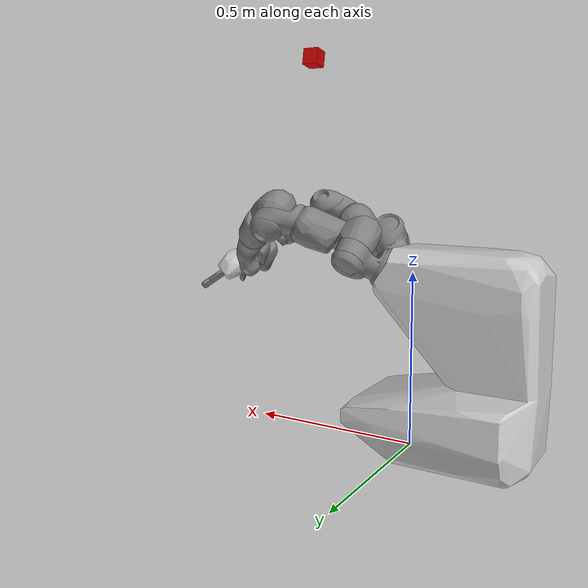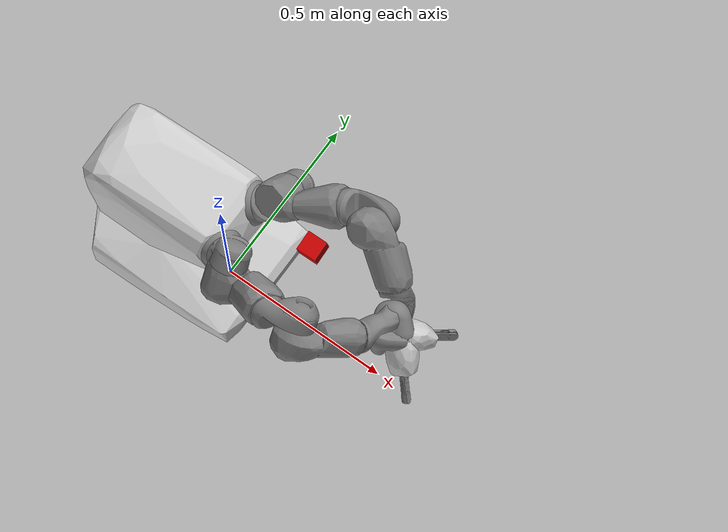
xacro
<?xml version="1.0"?>
<robot name="yumi" xmlns:xacro="http://www.ros.org/wiki/xacro">
  <!-- Add world link -->
  <link name="world"/>

  <!-- Import Rviz colors -->
  <xacro:include filename="$(find yumi_description)/urdf/materials.xacro" />
  <!-- Import utilities -->
  <xacro:include filename="$(find yumi_description)/urdf/utilities.xacro" />
  <!--Import the yumi macro -->
  <xacro:include filename="$(find yumi_description)/urdf/yumi.xacro"/>
  <!--Import the yumi servo gripper macro -->
  <xacro:include filename="$(find yumi_description)/urdf/yumi_servo_gripper.xacro"/>

  <!-- Add fixed joint between world and base_link -->
  <joint name="world_joint" type="fixed">
    <parent link="world"/>
    <child link="base_link"/>
    <origin xyz="0 0 0.1" rpy="0 0 0"/>
  </joint>

  <!-- Define base_link -->
  <link name="base_link">
    <visual>
      <origin rpy="0 0 0" xyz="0 0 0"/>
      <geometry>
        <mesh filename="package://yumi_description/meshes/body.stl"/>
      </geometry>
      <material name="Light_Grey"/>
    </visual>
    <collision>
      <origin rpy="0 0 0" xyz="0 0 0"/>
      <geometry>
        <mesh filename="package://yumi_description/meshes/coarse/body.stl"/>
      </geometry>
      <material name="Light_Grey"/>
    </collision>
  </link>

  <!-- Camera Link -->
  <link name="phoxi">
    <collision>
      <origin xyz="0 0 0" rpy="0 0 0"/>
      <geometry>
        <box size="0.05 0.05 0.05"/>
      </geometry>
    </collision>
    <visual>
      <origin xyz="0 0 0" rpy="0 0 0"/>
      <geometry>
        <box size="0.05 0.05 0.05"/>
      </geometry>
      <material name="Red"/>
    </visual>
    <inertial>
      <mass value="1e-5"/>
      <origin xyz="0 0 0" rpy="0 0 0"/>
      <inertia ixx="1e-6" ixy="0" ixz="0" iyy="1e-6" iyz="0" izz="1e-6"/>
    </inertial>
  </link>

  <!-- Camera Joint with correct transformation -->
  <joint name="phoxi_joint" type="fixed">
    <parent link="base_link"/>
    <child link="phoxi"/>
    <origin xyz="0.374278 -0.089685 1.043344" rpy="-1.5533 0.157080 -1.5542"/>
  </joint>

  <!--yumi-->
  <xacro:yumi name="yumi" hardware_interface="PositionJointInterface" parent="base_link">
    <origin xyz="0 0 0" rpy="0 0 0"/>
  </xacro:yumi>

  <!--right gripper-->
  <xacro:yumi_servo_gripper name="gripper_r" hardware_interface="PositionJointInterface" parent="yumi_link_7_r">
    <origin xyz="0 0 0.007" rpy="0 0 ${PI}"/>
  </xacro:yumi_servo_gripper>

  <!--left gripper-->
  <xacro:yumi_servo_gripper name="gripper_l" hardware_interface="PositionJointInterface" parent="yumi_link_7_l">
    <origin xyz="0 0 0.007" rpy="0 0 ${PI}"/>
  </xacro:yumi_servo_gripper>

</robot>

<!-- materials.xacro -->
<robot>

  <material name="Black">
    <color rgba="0.0 0.0 0.0 1.0"/>
  </material>

  <material name="Blue">
    <color rgba="0.0 0.0 0.8 1.0"/>
  </material>

  <material name="Green">
    <color rgba="0.0 0.8 0.0 1.0"/>
  </material>

  <material name="Grey">
    <color rgba="0.5 0.5 0.5 1.0"/>
  </material>

  <material name="Light_Grey">
    <color rgba="0.8 0.8 0.8 1.0"/>
  </material>

  <material name="Ivory">
    <color rgba="1.0 1.0 0.94 1.0"/>
  </material>

  <material name="Orange">
    <color rgba="${255/255} ${108/255} ${10/255} 1.0"/>
  </material>

  <material name="Brown">
    <color rgba="${222/255} ${207/255} ${195/255} 1.0"/>
  </material>

  <material name="Red">
    <color rgba="0.8 0.0 0.0 1.0"/>
  </material>

  <material name="White">
    <color rgba="1.0 1.0 1.0 1.0"/>
  </material>

</robot>

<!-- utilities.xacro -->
<robot name="lbr_iiwa" xmlns:xacro="http://www.ros.org/wiki/xacro">

  <xacro:property name="PI" value="3.1415926535897931"/>

<!-- The following macros are adapted from the LWR 4 definitions of the RCPRG - https://github.com/RCPRG-ros-pkg/lwr_robot -->
  <!--Little helper macros to define the inertia matrix needed for links.-->
  <!--Cuboid-->
  <xacro:macro name="cuboid_inertia" params="width height length mass">
    <inertia ixx="${mass * (height * height + length * length) / 12)}"
             iyy="${mass * (width * width + length * length) / 12)}"
             izz="${mass * (width * width + height * height) / 12)}"
             ixy="0" iyz="0" ixz="0"/>
  </xacro:macro>

  <!--Cylinder: length is along the y-axis! -->
  <xacro:macro name="cylinder_inertia" params="radius length mass">
    <inertia ixx="${mass * (3 * radius * radius + length * length) / 12)}"
             iyy="${mass * radius* radius / 2)}"
             izz="${mass * (3 * radius * radius + length * length) / 12)}"
             ixy="0" iyz="0" ixz="0"/>
  </xacro:macro>

</robot>

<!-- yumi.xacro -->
<robot name="yumi" xmlns:xacro="http://www.ros.org/wiki/xacro">

  <!-- Import all Gazebo-customization elements, including Gazebo colors -->
  <xacro:include filename="$(find yumi_description)/urdf/yumi.gazebo.xacro" />
  <!-- Import Transmissions -->
  <xacro:include filename="$(find yumi_description)/urdf/yumi.transmission.xacro" />
  <!-- Include Utilities -->
  <xacro:include filename="$(find yumi_description)/urdf/utilities.xacro" />

  <!-- some constants -->
  <xacro:property name="joint_damping" value="0.5" />
  <xacro:property name="max_effort" value="300"/>

  <xacro:macro name="yumi" params="parent name hardware_interface *origin">

    <!--joint between {parent} and body-->
    <joint name="${parent}_joint" type="fixed">
      <insert_block name="origin"/>
      <parent link="${parent}"/>
      <child link="${name}_body"/>
    </joint>

    <link name="${name}_body">
      <inertial>
        <origin xyz="0 0 0" rpy="0 0 0"/>
        <mass value="15"/>
        <inertia ixx="0.5"  ixy="0"  ixz="0" iyy="0.6" iyz="0" izz="0.3" />
      </inertial>

      <visual>
        <origin xyz="0 0 0" rpy="0 0 0"/>
        <geometry>
          <mesh filename="package://yumi_description/meshes/body.stl"/>
        </geometry>
        <material name="Light_Grey"/>
      </visual>

      <collision>
        <origin xyz="0 0 0" rpy="0 0 0"/>
        <geometry>
          <mesh filename="package://yumi_description/meshes/coarse/body.stl"/>
        </geometry>
        <material name="Light_Grey"/>
      </collision>

    </link>

   <!--///////////////////////////////////// RIGHT ARM ////////////////////////////////  -->

   <!-- joint between body and link_1_r -->
    <joint name="${name}_joint_1_r" type="revolute">
      <parent link="${name}_body"/>
      <child link="${name}_link_1_r"/>
      <origin xyz="0.05355 -0.0725 0.41492" rpy="-0.9795   -0.5682   -2.3155"/>
      <axis xyz="0 0 1"/>
      <limit lower="${-168.5 * PI / 180}" upper="${168.5 * PI / 180}"
             effort="${max_effort}" velocity="${180 * PI / 180}" />
      <dynamics damping="${joint_damping}"/>
    </joint>

   <link name="${name}_link_1_r">
      <inertial>
        <origin xyz="0 -0.03 0.12" rpy="0 0 0"/>
        <mass value="2"/>
        <inertia ixx="0.1"  ixy="0"  ixz="0" iyy="0.1" iyz="0" izz="0.1" />
      </inertial>

      <visual>
        <origin xyz="0 0 0" rpy="0 0 0"/>
        <geometry>
          <mesh filename="package://yumi_description/meshes/link_1.stl"/>
        </geometry>
        <material name="Grey"/>
      </visual>

      <collision>
        <origin xyz="0 0 0" rpy="0 0 0"/>
        <geometry>
          <mesh filename="package://yumi_description/meshes/coarse/link_1.stl"/>
        </geometry>
        <material name="Grey"/>
      </collision>
    </link>

   <!-- joint between link_1_r and link_2_r -->
    <joint name="${name}_joint_2_r" type="revolute">
      <parent link="${name}_link_1_r"/>
      <child link="${name}_link_2_r"/>
      <origin xyz="0.03 0.0 0.1" rpy="${PI / 2} 0.0 0.0"/>
      <axis xyz="0 0 1"/>
      <limit lower="${-143.5 * PI / 180}" upper="${43.5 * PI / 180}"
             effort="${max_effort}" velocity="${180 * PI / 180}" />
      <dynamics damping="${joint_damping}"/>
    </joint>

   <link name="${name}_link_2_r">
      <inertial>
        <origin xyz="0 0 0" rpy="0 0 0"/>
        <mass value="2"/>
        <inertia ixx="0.1"  ixy="0"  ixz="0" iyy="0.1" iyz="0" izz="0.1" />
      </inertial>

      <visual>
        <origin xyz="0 0 0" rpy="0 0 0"/>
        <geometry>
          <mesh filename="package://yumi_description/meshes/link_2.stl"/>
        </geometry>
        <material name="Grey"/>
      </visual>

      <collision>
        <origin xyz="0 0 0" rpy="0 0 0"/>
        <geometry>
          <mesh filename="package://yumi_description/meshes/coarse/link_2.stl"/>
        </geometry>
        <material name="Grey"/>
      </collision>
    </link>

   <!-- joint between link_2_r and link_3_r -->
    <joint name="${name}_joint_7_r" type="revolute">
      <parent link="${name}_link_2_r"/>
      <child link="${name}_link_3_r"/>
      <origin xyz="-0.03 0.17283 0.0" rpy="${-PI / 2} 0.0 0.0"/>
      <axis xyz="0 0 1"/>
      <limit lower="${-168.5 * PI / 180}" upper="${168.5 * PI / 180}"
             effort="${max_effort}" velocity="${180 * PI / 180}" />
      <dynamics damping="${joint_damping}"/>
    </joint>

   <link name="${name}_link_3_r">
      <inertial>
        <origin xyz="0 0 0" rpy="0 0 0"/>
        <mass value="2"/>
        <inertia ixx="0.1"  ixy="0"  ixz="0" iyy="0.1" iyz="0" izz="0.1" />
      </inertial>

      <visual>
        <origin xyz="0 0 0" rpy="0 0 0"/>
        <geometry>
          <mesh filename="package://yumi_description/meshes/link_3.stl"/>
        </geometry>
        <material name="Grey"/>
      </visual>

      <collision>
        <origin xyz="0 0 0" rpy="0 0 0"/>
        <geometry>
          <mesh filename="package://yumi_description/meshes/coarse/link_3.stl"/>
        </geometry>
        <material name="Grey"/>
      </collision>
    </link>

   <!-- joint between link_3_r and link_4_r -->
    <joint name="${name}_joint_3_r" type="revolute">
      <parent link="${name}_link_3_r"/>
      <child link="${name}_link_4_r"/>
      <origin xyz="-0.04188 0.0 0.07873" rpy="${PI / 2} ${- PI / 2} 0.0"/>
      <axis xyz="0 0 1"/>
      <limit lower="${-123.5 * PI / 180}" upper="${80 * PI / 180}"
             effort="${max_effort}" velocity="${180 * PI / 180}" />
      <dynamics damping="${joint_damping}"/>
    </joint>

   <link name="${name}_link_4_r">
      <inertial>
        <origin xyz="0 0 0" rpy="0 0 0"/>
        <mass value="2"/>
        <inertia ixx="0.1"  ixy="0"  ixz="0" iyy="0.1" iyz="0" izz="0.1" />
      </inertial>

      <visual>
        <origin xyz="0 0 0" rpy="0 0 0"/>
        <geometry>
          <mesh filename="package://yumi_description/meshes/link_4.stl"/>
        </geometry>
        <material name="Grey"/>
      </visual>

      <collision>
        <origin xyz="0 0 0" rpy="0 0 0"/>
        <geometry>
          <mesh filename="package://yumi_description/meshes/coarse/link_4.stl"/>
        </geometry>
        <material name="Grey"/>
      </collision>
    </link>

   <!-- joint between link_4_r and link_5_r -->
    <joint name="${name}_joint_4_r" type="revolute">
      <parent link="${name}_link_4_r"/>
      <child link="${name}_link_5_r"/>
      <origin xyz="0.0405 0.16461 0.0" rpy="-${PI / 2} 0.0 0.0"/>
      <axis xyz="0 0 1"/>
      <limit lower="${-290 * PI / 180}" upper="${290 * PI / 180}"
             effort="${max_effort}" velocity="${400 * PI / 180}" />
      <dynamics damping="${joint_damping}"/>
    </joint>

   <link name="${name}_link_5_r">
      <inertial>
        <origin xyz="0 0 0" rpy="0 0 0"/>
        <mass value="2"/>
        <inertia ixx="0.1"  ixy="0"  ixz="0" iyy="0.1" iyz="0" izz="0.1" />
      </inertial>

      <visual>
        <origin xyz="0 0 0" rpy="0 0 0"/>
        <geometry>
          <mesh filename="package://yumi_description/meshes/link_5.stl"/>
        </geometry>
        <material name="Grey"/>
      </visual>

      <collision>
        <origin xyz="0 0 0" rpy="0 0 0"/>
        <geometry>
          <mesh filename="package://yumi_description/meshes/coarse/link_5.stl"/>
        </geometry>
        <material name="Grey"/>
      </collision>
    </link>

   <!-- joint between link_5_r and link_6_r -->
    <joint name="${name}_joint_5_r" type="revolute">
      <parent link="${name}_link_5_r"/>
      <child link="${name}_link_6_r"/>
      <origin xyz="-0.027 0 0.10039" rpy="${PI / 2} 0.0 0.0"/>
      <axis xyz="0 0 1"/>
      <limit lower="${-88 * PI / 180}" upper="${138 * PI / 180}"
             effort="${max_effort}" velocity="${400 * PI / 180}" />
      <dynamics damping="${joint_damping}"/>
    </joint>

   <link name="${name}_link_6_r">
      <inertial>
        <origin xyz="0 0 0" rpy="0 0 0"/>
        <mass value="2"/>
        <inertia ixx="0.1"  ixy="0"  ixz="0" iyy="0.1" iyz="0" izz="0.1" />
      </inertial>

      <visual>
        <origin xyz="0 0 0" rpy="0 0 0"/>
        <geometry>
          <mesh filename="package://yumi_description/meshes/link_6.stl"/>
        </geometry>
        <material name="Grey"/>
      </visual>

      <collision>
        <origin xyz="0 0 0" rpy="0 0 0"/>
        <geometry>
          <mesh filename="package://yumi_description/meshes/coarse/link_6.stl"/>
        </geometry>
        <material name="Grey"/>
      </collision>
    </link>

   <!-- joint between link_6_r and link_7_r -->
    <joint name="${name}_joint_6_r" type="revolute">
      <parent link="${name}_link_6_r"/>
      <child link="${name}_link_7_r"/>
      <origin xyz="0.027 0.029 0.0" rpy="-${PI / 2} 0.0 0.0"/>
      <axis xyz="0 0 1"/>
      <limit lower="${-229 * PI / 180}" upper="${229 * PI / 180}"
             effort="${max_effort}" velocity="${400 * PI / 180}" />
      <dynamics damping="${joint_damping}"/>
    </joint>

   <link name="${name}_link_7_r">
      <inertial>
        <origin xyz="0 0 0" rpy="0 0 0"/>
        <mass value="2"/>
        <inertia ixx="0.1"  ixy="0"  ixz="0" iyy="0.1" iyz="0" izz="0.1" />
      </inertial>

      <visual>
        <origin xyz="0 0 0" rpy="0 0 0"/>
        <geometry>
          <mesh filename="package://yumi_description/meshes/link_7.stl"/>
        </geometry>
        <material name="Grey"/>
      </visual>

      <collision>
        <origin xyz="0 0 0" rpy="0 0 0"/>
        <geometry>
          <mesh filename="package://yumi_description/meshes/coarse/link_7.stl"/>
        </geometry>
        <material name="Grey"/>
      </collision>
    </link>

   <!--///////////////////////////////////// LEFT ARM ////////////////////////////////  -->

  <!-- joint between body and link_1_l -->
    <joint name="${name}_joint_1_l" type="revolute">
      <parent link="${name}_body"/>
      <child link="${name}_link_1_l"/>
      <origin xyz="0.05355 0.07250 0.41492" rpy="0.9781 -0.5716 2.3180"/>
      <axis xyz="0 0 1"/>
      <limit lower="${-168.5 * PI / 180}" upper="${168.5 * PI / 180}"
             effort="${max_effort}" velocity="${180 * PI / 180}" />
      <dynamics damping="${joint_damping}"/>
    </joint>

   <link name="${name}_link_1_l">
      <inertial>
        <origin xyz="0 -0.03 0.12" rpy="0 0 0"/>
        <mass value="2"/>
        <inertia ixx="0.1"  ixy="0"  ixz="0" iyy="0.1" iyz="0" izz="0.1" />
      </inertial>

      <visual>
        <origin xyz="0 0 0" rpy="0 0 0"/>
        <geometry>
          <mesh filename="package://yumi_description/meshes/link_1.stl"/>
        </geometry>
        <material name="Grey"/>
      </visual>

      <collision>
        <origin xyz="0 0 0" rpy="0 0 0"/>
        <geometry>
          <mesh filename="package://yumi_description/meshes/coarse/link_1.stl"/>
        </geometry>
        <material name="Grey"/>
      </collision>
    </link>

 <!-- joint between link_1_l and link_2_l -->
    <joint name="${name}_joint_2_l" type="revolute">
      <parent link="${name}_link_1_l"/>
      <child link="${name}_link_2_l"/>
      <origin xyz="0.03 0.0 0.1" rpy="${PI / 2} 0.0 0.0"/>
      <axis xyz="0 0 1"/>
      <limit lower="${-143.5 * PI / 180}" upper="${43.5 * PI / 180}"
             effort="${max_effort}" velocity="${180 * PI / 180}" />
      <dynamics damping="${joint_damping}"/>
    </joint>

   <link name="${name}_link_2_l">
      <inertial>
        <origin xyz="0 0 0" rpy="0 0 0"/>
        <mass value="2"/>
        <inertia ixx="0.1"  ixy="0"  ixz="0" iyy="0.1" iyz="0" izz="0.1" />
      </inertial>

      <visual>
        <origin xyz="0 0 0" rpy="0 0 0"/>
        <geometry>
          <mesh filename="package://yumi_description/meshes/link_2.stl"/>
        </geometry>
        <material name="Grey"/>
      </visual>

      <collision>
        <origin xyz="0 0 0" rpy="0 0 0"/>
        <geometry>
          <mesh filename="package://yumi_description/meshes/coarse/link_2.stl"/>
        </geometry>
        <material name="Grey"/>
      </collision>
    </link>

 <!-- joint between link_2_l and link_3_l -->
    <joint name="${name}_joint_7_l" type="revolute">
      <parent link="${name}_link_2_l"/>
      <child link="${name}_link_3_l"/>
      <origin xyz="-0.03 0.17283 0.0" rpy="-${PI / 2} 0.0 0.0"/>
      <axis xyz="0 0 1"/>
      <limit lower="${-168.5 * PI / 180}" upper="${168.5 * PI / 180}"
             effort="${max_effort}" velocity="${180 * PI / 180}" />
      <dynamics damping="${joint_damping}"/>
    </joint>

   <link name="${name}_link_3_l">
      <inertial>
        <origin xyz="0 0 0" rpy="0 0 0"/>
        <mass value="2"/>
        <inertia ixx="0.1"  ixy="0"  ixz="0" iyy="0.1" iyz="0" izz="0.1" />
      </inertial>

      <visual>
        <origin xyz="0 0 0" rpy="0 0 0"/>
        <geometry>
          <mesh filename="package://yumi_description/meshes/link_3.stl"/>
        </geometry>
        <material name="Grey"/>
      </visual>

      <collision>
        <origin xyz="0 0 0" rpy="0 0 0"/>
        <geometry>
          <mesh filename="package://yumi_description/meshes/coarse/link_3.stl"/>
        </geometry>
        <material name="Grey"/>
      </collision>
    </link>

   <!-- joint between link_3_l and link_4_l -->
    <joint name="${name}_joint_3_l" type="revolute">
      <parent link="${name}_link_3_l"/>
      <child link="${name}_link_4_l"/>
      <origin xyz="-0.04188 0.0 0.07873" rpy="${PI / 2} -${PI / 2} 0.0"/>
      <axis xyz="0 0 1"/>
      <limit lower="${-123.5 * PI / 180}" upper="${80 * PI / 180}"
             effort="${max_effort}" velocity="${180 * PI / 180}" />
      <dynamics damping="${joint_damping}"/>
    </joint>

   <link name="${name}_link_4_l">
      <inertial>
        <origin xyz="0 0 0" rpy="0 0 0"/>
        <mass value="2"/>
        <inertia ixx="0.1"  ixy="0"  ixz="0" iyy="0.1" iyz="0" izz="0.1" />
      </inertial>

      <visual>
        <origin xyz="0 0 0" rpy="0 0 0"/>
        <geometry>
          <mesh filename="package://yumi_description/meshes/link_4.stl"/>
        </geometry>
        <material name="Grey"/>
      </visual>

      <collision>
        <origin xyz="0 0 0" rpy="0 0 0"/>
        <geometry>
          <mesh filename="package://yumi_description/meshes/coarse/link_4.stl"/>
        </geometry>
        <material name="Grey"/>
      </collision>
    </link>

   <!-- joint between link_4_l and link_5_l -->
    <joint name="${name}_joint_4_l" type="revolute">
      <parent link="${name}_link_4_l"/>
      <child link="${name}_link_5_l"/>
      <origin xyz="0.0405 0.16461 0.0" rpy="-${PI / 2} 0.0 0.0"/>
      <axis xyz="0 0 1"/>
      <limit lower="${-290 * PI / 180}" upper="${290 * PI / 180}"
             effort="${max_effort}" velocity="${400 * PI / 180}" />
      <dynamics damping="${joint_damping}"/>
    </joint>

   <link name="${name}_link_5_l">
      <inertial>
        <origin xyz="0 0 0" rpy="0 0 0"/>
        <mass value="2"/>
        <inertia ixx="0.1"  ixy="0"  ixz="0" iyy="0.1" iyz="0" izz="0.1" />
      </inertial>

      <visual>
        <origin xyz="0 0 0" rpy="0 0 0"/>
        <geometry>
          <mesh filename="package://yumi_description/meshes/link_5.stl"/>
        </geometry>
        <material name="Grey"/>
      </visual>

      <collision>
        <origin xyz="0 0 0" rpy="0 0 0"/>
        <geometry>
          <mesh filename="package://yumi_description/meshes/coarse/link_5.stl"/>
        </geometry>
        <material name="Grey"/>
      </collision>
    </link>

   <!-- joint between link_5_l and link_6_l -->
    <joint name="${name}_joint_5_l" type="revolute">
      <parent link="${name}_link_5_l"/>
      <child link="${name}_link_6_l"/>
      <origin xyz="-0.027 0 0.10039" rpy="${PI / 2} 0.0 0.0"/>
      <axis xyz="0 0 1"/>
      <limit lower="${-88 * PI / 180}" upper="${138 * PI / 180}"
             effort="${max_effort}" velocity="${400 * PI / 180}" />
      <dynamics damping="${joint_damping}"/>
    </joint>

   <link name="${name}_link_6_l">
      <inertial>
        <origin xyz="0 0 0" rpy="0 0 0"/>
        <mass value="2"/>
        <inertia ixx="0.1"  ixy="0"  ixz="0" iyy="0.1" iyz="0" izz="0.1" />
      </inertial>

      <visual>
        <origin xyz="0 0 0" rpy="0 0 0"/>
        <geometry>
          <mesh filename="package://yumi_description/meshes/link_6.stl"/>
        </geometry>
        <material name="Grey"/>
      </visual>

      <collision>
        <origin xyz="0 0 0" rpy="0 0 0"/>
        <geometry>
          <mesh filename="package://yumi_description/meshes/coarse/link_6.stl"/>
        </geometry>
        <material name="Grey"/>
      </collision>
    </link>

   <!-- joint between link_6_l and link_7_l -->
    <joint name="${name}_joint_6_l" type="revolute">
      <parent link="${name}_link_6_l"/>
      <child link="${name}_link_7_l"/>
      <origin xyz="0.027 0.029 0.0" rpy="${-PI / 2} 0.0 0.0"/>
      <axis xyz="0 0 1"/>
      <limit lower="${-229 * PI / 180}" upper="${229 * PI / 180}"
             effort="${max_effort}" velocity="${400 * PI / 180}" />
      <dynamics damping="${joint_damping}"/>
    </joint>

   <link name="${name}_link_7_l">
      <inertial>
        <origin xyz="0 0 0" rpy="0 0 0"/>
        <mass value="2"/>
        <inertia ixx="0.1"  ixy="0"  ixz="0" iyy="0.1" iyz="0" izz="0.1" />
      </inertial>

      <visual>
        <origin xyz="0 0 0" rpy="0 0 0"/>
        <geometry>
          <mesh filename="package://yumi_description/meshes/link_7.stl"/>
        </geometry>
        <material name="Grey"/>
      </visual>

      <collision>
        <origin xyz="0 0 0" rpy="0 0 0"/>
        <geometry>
          <mesh filename="package://yumi_description/meshes/coarse/link_7.stl"/>
        </geometry>
        <material name="Grey"/>
      </collision>
    </link>

    <!--Extensions -->
    <xacro:yumi_gazebo name="${name}" />
    <xacro:yumi_transmission name="${name}" hardware_interface="${hardware_interface}"/>

  </xacro:macro>

</robot>

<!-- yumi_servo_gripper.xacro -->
<robot name="yumi" xmlns:xacro="http://www.ros.org/wiki/xacro">

  <!-- Import all Gazebo-customization elements, including Gazebo colors -->
  <xacro:include filename="$(find yumi_description)/urdf/yumi_servo_gripper.gazebo.xacro" />
  <!-- Import Transmissions -->
  <xacro:include filename="$(find yumi_description)/urdf/yumi_servo_gripper.transmission.xacro" />
  <!-- Include Utilities -->
  <xacro:include filename="$(find yumi_description)/urdf/utilities.xacro" />

  <!-- some constants -->
  <xacro:property name="joint_damping" value="0.5" />
  <xacro:property name="max_effort" value="300"/>

  <xacro:macro name="yumi_servo_gripper" params="parent name hardware_interface *origin">

    <!--joint between {parent} and base-->
    <joint name="${parent}_joint" type="fixed">
      <insert_block name="origin"/>
      <parent link="${parent}"/>
      <child link="${name}_base"/>
    </joint>

    <link name="${name}_base">
      <inertial>
        <origin xyz="0 0 0" rpy="0 0 0"/>
        <mass value="0.2"/>
        <inertia ixx="0.0001"  ixy="0"  ixz="0" iyy="0.0001" iyz="0" izz="0.0001" />
      </inertial>

      <visual>
        <origin xyz="0 0 0" rpy="0 0 0"/>
        <geometry>
          <mesh filename="package://yumi_description/meshes/gripper/base.stl"/>
        </geometry>
        <material name="Light_Grey"/>
      </visual>

      <collision>
        <origin xyz="0 0 0" rpy="0 0 0"/>
        <geometry>
          <mesh filename="package://yumi_description/meshes/gripper/coarse/base.stl"/>
        </geometry>
        <material name="Light_Grey"/>
      </collision>

    </link>

    <!-- joint between base and right finger -->
    <joint name="${name}_joint" type="prismatic">
      <parent link="${name}_base"/>
      <child link="${name}_finger_r"/>
      <origin xyz="0 -0.0065 0.0837" rpy="0 0 0"/>
      <axis xyz="-1 0 0"/>
      <limit lower="0" upper="0.025"
             effort="${max_effort}" velocity="0.02" />
      <dynamics damping="${joint_damping}"/>
    </joint>

    <link name="${name}_finger_r">
      <inertial>
        <origin xyz="0 0 0" rpy="0 0 0"/>
        <mass value="0.01"/>
        <inertia ixx="0.000001"  ixy="0"  ixz="0" iyy="0.000001" iyz="0" izz="0.000001" />
      </inertial>

      <visual>
        <origin xyz="0 0 0" rpy="0 0 0"/>
        <geometry>
          <mesh filename="package://yumi_description/meshes/gripper/finger.stl"/>
        </geometry>
        <material name="Grey"/>
      </visual>

      <collision>
        <origin xyz="0 0 0" rpy="0 0 0"/>
        <geometry>
          <mesh filename="package://yumi_description/meshes/gripper/coarse/finger.stl"/>
        </geometry>
        <material name="Grey"/>
      </collision>
    </link>

   <!-- joint between base and left finger -->
    <joint name="${name}_joint_m" type="prismatic">
      <parent link="${name}_base"/>
      <child link="${name}_finger_l"/>
      <origin xyz="0 0.0065 0.0837" rpy="0 0 ${PI}"/>
      <axis xyz="-1 0 0"/>
      <limit lower="0" upper="0.025"
             effort="${max_effort}" velocity="0.02" />
      <dynamics damping="${joint_damping}"/>
      <mimic joint="${name}_joint"/>
    </joint>

    <link name="${name}_finger_l">
      <inertial>
        <origin xyz="0 0 0" rpy="0 0 0"/>
        <mass value="0.01"/>
        <inertia ixx="0.000001"  ixy="0"  ixz="0" iyy="0.000001" iyz="0" izz="0.000001" />
      </inertial>

      <visual>
        <origin xyz="0 0 0" rpy="0 0 0"/>
        <geometry>
          <mesh filename="package://yumi_description/meshes/gripper/finger.stl"/>
        </geometry>
        <material name="Grey"/>
      </visual>

      <collision>
        <origin xyz="0 0 0" rpy="0 0 0"/>
        <geometry>
          <mesh filename="package://yumi_description/meshes/gripper/coarse/finger.stl"/>
        </geometry>
        <material name="Grey"/>
      </collision>
    </link>

     <!--Extensions -->
    <xacro:yumi_servo_gripper_gazebo name="${name}" />
    <xacro:yumi_servo_gripper_transmission name="${name}" hardware_interface="${hardware_interface}"/>

  </xacro:macro>

</robot>
